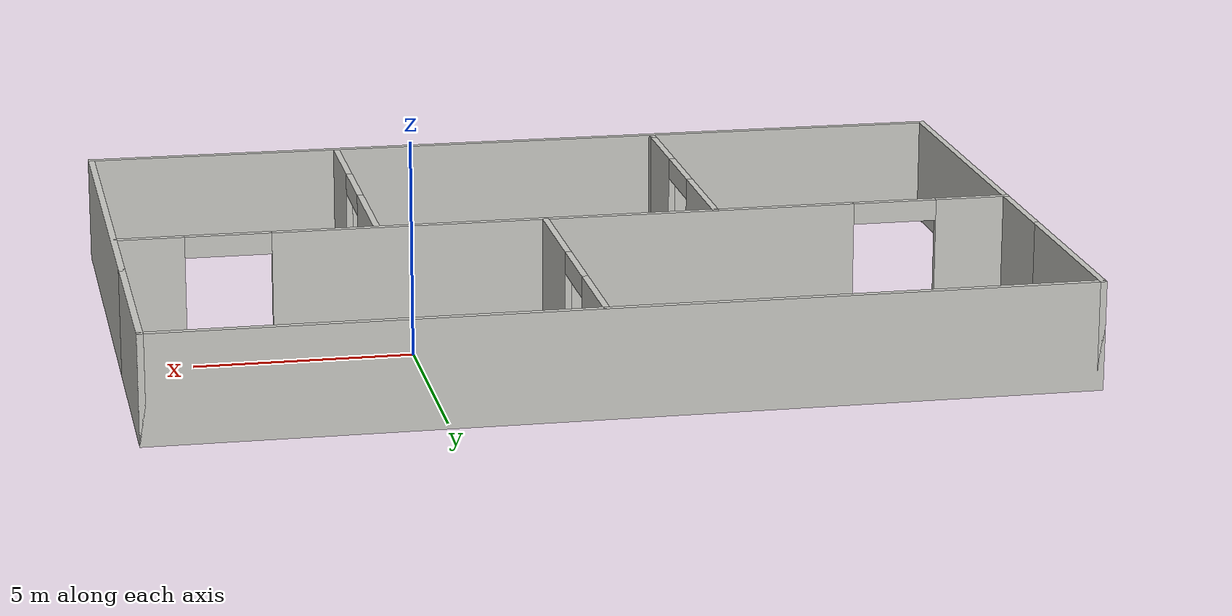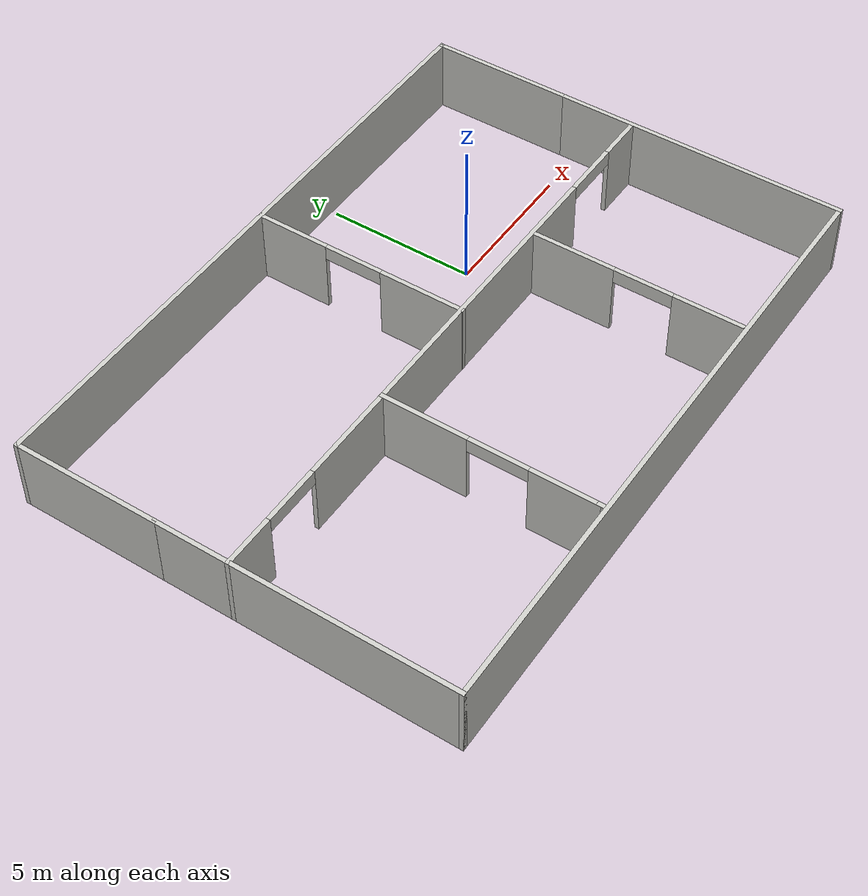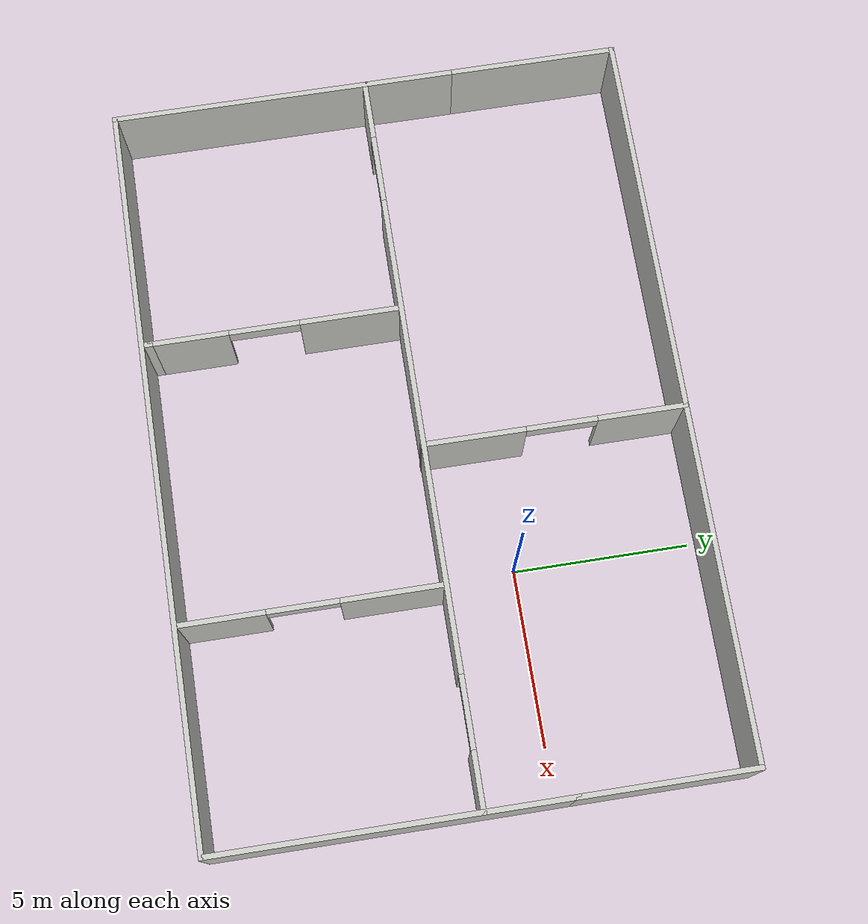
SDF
<?xml version='1.0'?>
<sdf version='1.6'>
  <model name='myworld'>
    <pose frame=''>-3.97768 -2.05528 0 0 -0 0</pose>
    <link name='Wall_0'>
      <collision name='Wall_0_Collision'>
        <geometry>
          <box>
            <size>10 0.15 2.5</size>
          </box>
        </geometry>
        <pose frame=''>0 0 1.25 0 -0 0</pose>
      </collision>
      <visual name='Wall_0_Visual'>
        <pose frame=''>0 0 1.25 0 -0 0</pose>
        <geometry>
          <box>
            <size>10 0.15 2.5</size>
          </box>
        </geometry>
        <material>
          <script>
            <uri>file://media/materials/scripts/gazebo.material</uri>
            <name>Gazebo/CeilingTiled</name>
          </script>
          <ambient>1 1 0 1</ambient>
        </material>
        <meta>
          <layer>0</layer>
        </meta>
      </visual>
      <pose frame=''>-10.5499 -2.425 0 0 0 -1.5708</pose>
    </link>
    <link name='Wall_1'>
      <collision name='Wall_1_Collision'>
        <geometry>
          <box>
            <size>21.25 0.15 2.5</size>
          </box>
        </geometry>
        <pose frame=''>0 0 1.25 0 -0 0</pose>
      </collision>
      <visual name='Wall_1_Visual'>
        <pose frame=''>0 0 1.25 0 -0 0</pose>
        <geometry>
          <box>
            <size>21.25 0.15 2.5</size>
          </box>
        </geometry>
        <material>
          <script>
            <uri>file://media/materials/scripts/gazebo.material</uri>
            <name>Gazebo/CeilingTiled</name>
          </script>
          <ambient>0.333333 1 0 1</ambient>
        </material>
        <meta>
          <layer>0</layer>
        </meta>
      </visual>
      <pose frame=''>6.1e-05 -7.35 0 0 -0 0</pose>
    </link>
    <link name='Wall_16'>
      <pose frame=''>-6.2e-05 0.001581 0 0 -0 0</pose>
      <visual name='Wall_16_Visual_0'>
        <pose frame=''>-9.72617 0 1.25 0 -0 0</pose>
        <geometry>
          <box>
            <size>1.79767 0.15 2.5</size>
          </box>
        </geometry>
        <material>
          <script>
            <uri>file://media/materials/scripts/gazebo.material</uri>
            <name>Gazebo/CeilingTiled</name>
          </script>
          <ambient>0 0 0 1</ambient>
        </material>
        <meta>
          <layer>0</layer>
        </meta>
      </visual>
      <collision name='Wall_16_Collision_0'>
        <geometry>
          <box>
            <size>1.79767 0.15 2.5</size>
          </box>
        </geometry>
        <pose frame=''>-9.72617 0 1.25 0 -0 0</pose>
      </collision>
      <visual name='Wall_16_Visual_1'>
        <pose frame=''>0.056227 0 1.25 0 -0 0</pose>
        <geometry>
          <box>
            <size>13.7671 0.15 2.5</size>
          </box>
        </geometry>
        <material>
          <script>
            <uri>file://media/materials/scripts/gazebo.material</uri>
            <name>Gazebo/CeilingTiled</name>
          </script>
          <ambient>0 0 0 1</ambient>
        </material>
        <meta>
          <layer>0</layer>
        </meta>
      </visual>
      <collision name='Wall_16_Collision_1'>
        <geometry>
          <box>
            <size>13.7671 0.15 2.5</size>
          </box>
        </geometry>
        <pose frame=''>0.056227 0 1.25 0 -0 0</pose>
      </collision>
      <visual name='Wall_16_Visual_2'>
        <pose frame=''>9.78239 0 1.25 0 -0 0</pose>
        <geometry>
          <box>
            <size>1.68521 0.15 2.5</size>
          </box>
        </geometry>
        <material>
          <script>
            <uri>file://media/materials/scripts/gazebo.material</uri>
            <name>Gazebo/CeilingTiled</name>
          </script>
          <ambient>0 0 0 1</ambient>
        </material>
        <meta>
          <layer>0</layer>
        </meta>
      </visual>
      <collision name='Wall_16_Collision_2'>
        <geometry>
          <box>
            <size>1.68521 0.15 2.5</size>
          </box>
        </geometry>
        <pose frame=''>9.78239 0 1.25 0 -0 0</pose>
      </collision>
      <visual name='Wall_16_Visual_3'>
        <pose frame=''>-7.82733 0 2.25 0 -0 0</pose>
        <geometry>
          <box>
            <size>2 0.15 0.5</size>
          </box>
        </geometry>
        <material>
          <script>
            <uri>file://media/materials/scripts/gazebo.material</uri>
            <name>Gazebo/CeilingTiled</name>
          </script>
          <ambient>0 0 0 1</ambient>
        </material>
        <meta>
          <layer>0</layer>
        </meta>
      </visual>
      <collision name='Wall_16_Collision_3'>
        <geometry>
          <box>
            <size>2 0.15 0.5</size>
          </box>
        </geometry>
        <pose frame=''>-7.82733 0 2.25 0 -0 0</pose>
      </collision>
      <visual name='Wall_16_Visual_4'>
        <pose frame=''>7.93979 0 2.25 0 -0 0</pose>
        <geometry>
          <box>
            <size>2 0.15 0.5</size>
          </box>
        </geometry>
        <material>
          <script>
            <uri>file://media/materials/scripts/gazebo.material</uri>
            <name>Gazebo/CeilingTiled</name>
          </script>
          <ambient>0 0 0 1</ambient>
        </material>
        <meta>
          <layer>0</layer>
        </meta>
      </visual>
      <collision name='Wall_16_Collision_4'>
        <geometry>
          <box>
            <size>2 0.15 0.5</size>
          </box>
        </geometry>
        <pose frame=''>7.93979 0 2.25 0 -0 0</pose>
      </collision>
    </link>
    <link name='Wall_2'>
      <collision name='Wall_2_Collision'>
        <geometry>
          <box>
            <size>10 0.15 2.5</size>
          </box>
        </geometry>
        <pose frame=''>0 0 1.25 0 -0 0</pose>
      </collision>
      <visual name='Wall_2_Visual'>
        <pose frame=''>0 0 1.25 0 -0 0</pose>
        <geometry>
          <box>
            <size>10 0.15 2.5</size>
          </box>
        </geometry>
        <material>
          <script>
            <uri>file://media/materials/scripts/gazebo.material</uri>
            <name>Gazebo/CeilingTiled</name>
          </script>
          <ambient>0.333333 0.333333 1 1</ambient>
        </material>
        <meta>
          <layer>0</layer>
        </meta>
      </visual>
      <pose frame=''>10.5501 -2.425 0 0 -0 1.5708</pose>
    </link>
    <link name='Wall_25'>
      <pose frame=''>-3.5035 -3.55368 0 0 0 -1.5708</pose>
      <visual name='Wall_25_Visual_0'>
        <pose frame=''>-2.14633 0 1.25 0 -0 0</pose>
        <geometry>
          <box>
            <size>2.95734 0.15 2.5</size>
          </box>
        </geometry>
        <material>
          <script>
            <uri>file://media/materials/scripts/gazebo.material</uri>
            <name>Gazebo/CeilingTiled</name>
          </script>
          <ambient>0.333333 0 0 1</ambient>
        </material>
        <meta>
          <layer>0</layer>
        </meta>
      </visual>
      <collision name='Wall_25_Collision_0'>
        <geometry>
          <box>
            <size>2.95734 0.15 2.5</size>
          </box>
        </geometry>
        <pose frame=''>-2.14633 0 1.25 0 -0 0</pose>
      </collision>
      <visual name='Wall_25_Visual_1'>
        <pose frame=''>2.47867 0 1.25 0 -0 0</pose>
        <geometry>
          <box>
            <size>2.29266 0.15 2.5</size>
          </box>
        </geometry>
        <material>
          <script>
            <uri>file://media/materials/scripts/gazebo.material</uri>
            <name>Gazebo/CeilingTiled</name>
          </script>
          <ambient>0.333333 0 0 1</ambient>
        </material>
        <meta>
          <layer>0</layer>
        </meta>
      </visual>
      <collision name='Wall_25_Collision_1'>
        <geometry>
          <box>
            <size>2.29266 0.15 2.5</size>
          </box>
        </geometry>
        <pose frame=''>2.47867 0 1.25 0 -0 0</pose>
      </collision>
      <visual name='Wall_25_Visual_2'>
        <pose frame=''>0.332335 0 2.25 0 -0 0</pose>
        <geometry>
          <box>
            <size>2 0.15 0.5</size>
          </box>
        </geometry>
        <material>
          <script>
            <uri>file://media/materials/scripts/gazebo.material</uri>
            <name>Gazebo/CeilingTiled</name>
          </script>
          <ambient>0.333333 0 0 1</ambient>
        </material>
        <meta>
          <layer>0</layer>
        </meta>
      </visual>
      <collision name='Wall_25_Collision_2'>
        <geometry>
          <box>
            <size>2 0.15 0.5</size>
          </box>
        </geometry>
        <pose frame=''>0.332335 0 2.25 0 -0 0</pose>
      </collision>
    </link>
    <link name='Wall_27'>
      <pose frame=''>4.49862 -3.64673 0 0 0 -1.5708</pose>
      <visual name='Wall_27_Visual_0'>
        <pose frame=''>-2.19286 0 1.25 0 -0 0</pose>
        <geometry>
          <box>
            <size>2.86429 0.15 2.5</size>
          </box>
        </geometry>
        <material>
          <script>
            <uri>file://media/materials/scripts/gazebo.material</uri>
            <name>Gazebo/CeilingTiled</name>
          </script>
          <ambient>0.666667 0 0.498039 1</ambient>
        </material>
        <meta>
          <layer>0</layer>
        </meta>
      </visual>
      <collision name='Wall_27_Collision_0'>
        <geometry>
          <box>
            <size>2.86429 0.15 2.5</size>
          </box>
        </geometry>
        <pose frame=''>-2.19286 0 1.25 0 -0 0</pose>
      </collision>
      <visual name='Wall_27_Visual_1'>
        <pose frame=''>2.43214 0 1.25 0 -0 0</pose>
        <geometry>
          <box>
            <size>2.38571 0.15 2.5</size>
          </box>
        </geometry>
        <material>
          <script>
            <uri>file://media/materials/scripts/gazebo.material</uri>
            <name>Gazebo/CeilingTiled</name>
          </script>
          <ambient>0.666667 0 0.498039 1</ambient>
        </material>
        <meta>
          <layer>0</layer>
        </meta>
      </visual>
      <collision name='Wall_27_Collision_1'>
        <geometry>
          <box>
            <size>2.38571 0.15 2.5</size>
          </box>
        </geometry>
        <pose frame=''>2.43214 0 1.25 0 -0 0</pose>
      </collision>
      <visual name='Wall_27_Visual_2'>
        <pose frame=''>0.239287 0 2.25 0 -0 0</pose>
        <geometry>
          <box>
            <size>2 0.15 0.5</size>
          </box>
        </geometry>
        <material>
          <script>
            <uri>file://media/materials/scripts/gazebo.material</uri>
            <name>Gazebo/CeilingTiled</name>
          </script>
          <ambient>0.666667 0 0.498039 1</ambient>
        </material>
        <meta>
          <layer>0</layer>
        </meta>
      </visual>
      <collision name='Wall_27_Collision_2'>
        <geometry>
          <box>
            <size>2 0.15 0.5</size>
          </box>
        </geometry>
        <pose frame=''>0.239287 0 2.25 0 -0 0</pose>
      </collision>
    </link>
    <link name='Wall_34'>
      <pose frame=''>0.552412 3.6586 0 0 -0 1.5708</pose>
      <visual name='Wall_34_Visual_0'>
        <pose frame=''>-2.27068 0 1.25 0 -0 0</pose>
        <geometry>
          <box>
            <size>2.95863 0.15 2.5</size>
          </box>
        </geometry>
        <material>
          <script>
            <uri>file://media/materials/scripts/gazebo.material</uri>
            <name>Gazebo/CeilingTiled</name>
          </script>
          <ambient>0 0.666667 0.498039 1</ambient>
        </material>
        <meta>
          <layer>0</layer>
        </meta>
      </visual>
      <collision name='Wall_34_Collision_0'>
        <geometry>
          <box>
            <size>2.95863 0.15 2.5</size>
          </box>
        </geometry>
        <pose frame=''>-2.27068 0 1.25 0 -0 0</pose>
      </collision>
      <visual name='Wall_34_Visual_1'>
        <pose frame=''>2.47932 0 1.25 0 -0 0</pose>
        <geometry>
          <box>
            <size>2.54137 0.15 2.5</size>
          </box>
        </geometry>
        <material>
          <script>
            <uri>file://media/materials/scripts/gazebo.material</uri>
            <name>Gazebo/CeilingTiled</name>
          </script>
          <ambient>0 0.666667 0.498039 1</ambient>
        </material>
        <meta>
          <layer>0</layer>
        </meta>
      </visual>
      <collision name='Wall_34_Collision_1'>
        <geometry>
          <box>
            <size>2.54137 0.15 2.5</size>
          </box>
        </geometry>
        <pose frame=''>2.47932 0 1.25 0 -0 0</pose>
      </collision>
      <visual name='Wall_34_Visual_2'>
        <pose frame=''>0.208629 0 2.25 0 -0 0</pose>
        <geometry>
          <box>
            <size>2 0.15 0.5</size>
          </box>
        </geometry>
        <material>
          <script>
            <uri>file://media/materials/scripts/gazebo.material</uri>
            <name>Gazebo/CeilingTiled</name>
          </script>
          <ambient>0 0.666667 0.498039 1</ambient>
        </material>
        <meta>
          <layer>0</layer>
        </meta>
      </visual>
      <collision name='Wall_34_Collision_2'>
        <geometry>
          <box>
            <size>2 0.15 0.5</size>
          </box>
        </geometry>
        <pose frame=''>0.208629 0 2.25 0 -0 0</pose>
      </collision>
    </link>
    <link name='Wall_36'>
      <collision name='Wall_36_Collision'>
        <geometry>
          <box>
            <size>0.25 0.15 2.5</size>
          </box>
        </geometry>
        <pose frame=''>0 0 1.25 0 -0 0</pose>
      </collision>
      <visual name='Wall_36_Visual'>
        <pose frame=''>0 0 1.25 0 -0 0</pose>
        <geometry>
          <box>
            <size>0.25 0.15 2.5</size>
          </box>
        </geometry>
        <material>
          <script>
            <uri>file://media/materials/scripts/gazebo.material</uri>
            <name>Gazebo/CeilingTiled</name>
          </script>
          <ambient>1 1 1 1</ambient>
        </material>
        <meta>
          <layer>0</layer>
        </meta>
      </visual>
      <pose frame=''>-3.5035 -7.15368 0 0 0 -1.5708</pose>
    </link>
    <link name='Wall_5'>
      <collision name='Wall_5_Collision'>
        <geometry>
          <box>
            <size>5 0.15 2.5</size>
          </box>
        </geometry>
        <pose frame=''>0 0 1.25 0 -0 0</pose>
      </collision>
      <visual name='Wall_5_Visual'>
        <pose frame=''>0 0 1.25 0 -0 0</pose>
        <geometry>
          <box>
            <size>5 0.15 2.5</size>
          </box>
        </geometry>
        <material>
          <script>
            <uri>file://media/materials/scripts/gazebo.material</uri>
            <name>Gazebo/CeilingTiled</name>
          </script>
          <ambient>1 1 0 1</ambient>
        </material>
        <meta>
          <layer>0</layer>
        </meta>
      </visual>
      <pose frame=''>-10.5499 4.925 0 0 -0 1.5708</pose>
    </link>
    <link name='Wall_6'>
      <collision name='Wall_6_Collision'>
        <geometry>
          <box>
            <size>21.25 0.15 2.5</size>
          </box>
        </geometry>
        <pose frame=''>0 0 1.25 0 -0 0</pose>
      </collision>
      <visual name='Wall_6_Visual'>
        <pose frame=''>0 0 1.25 0 -0 0</pose>
        <geometry>
          <box>
            <size>21.25 0.15 2.5</size>
          </box>
        </geometry>
        <material>
          <script>
            <uri>file://media/materials/scripts/gazebo.material</uri>
            <name>Gazebo/CeilingTiled</name>
          </script>
          <ambient>1 0 0 1</ambient>
        </material>
        <meta>
          <layer>0</layer>
        </meta>
      </visual>
      <pose frame=''>6.1e-05 7.35 0 0 -0 0</pose>
    </link>
    <link name='Wall_7'>
      <collision name='Wall_7_Collision'>
        <geometry>
          <box>
            <size>5 0.15 2.5</size>
          </box>
        </geometry>
        <pose frame=''>0 0 1.25 0 -0 0</pose>
      </collision>
      <visual name='Wall_7_Visual'>
        <pose frame=''>0 0 1.25 0 -0 0</pose>
        <geometry>
          <box>
            <size>5 0.15 2.5</size>
          </box>
        </geometry>
        <material>
          <script>
            <uri>file://media/materials/scripts/gazebo.material</uri>
            <name>Gazebo/CeilingTiled</name>
          </script>
          <ambient>0.333333 0.333333 1 1</ambient>
        </material>
        <meta>
          <layer>0</layer>
        </meta>
      </visual>
      <pose frame=''>10.5501 4.925 0 0 0 -1.5708</pose>
    </link>
    <static>1</static>
  </model>
</sdf>
